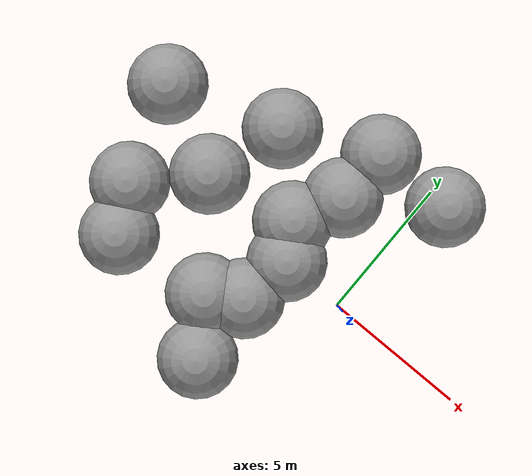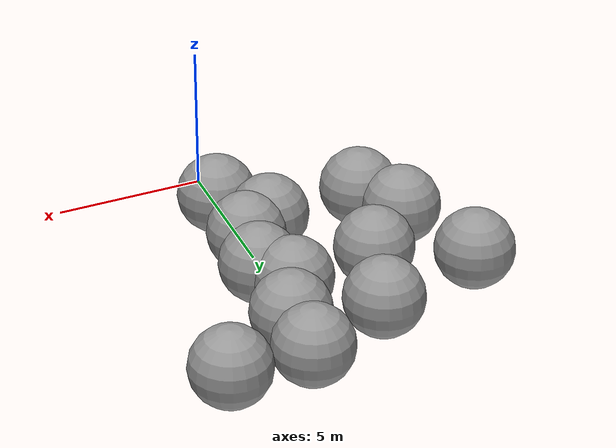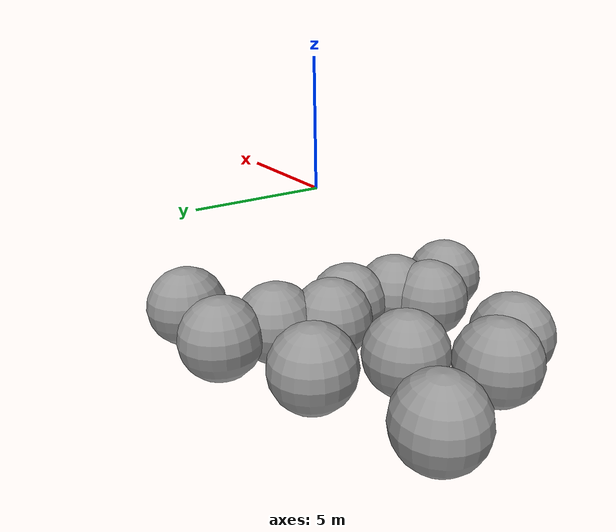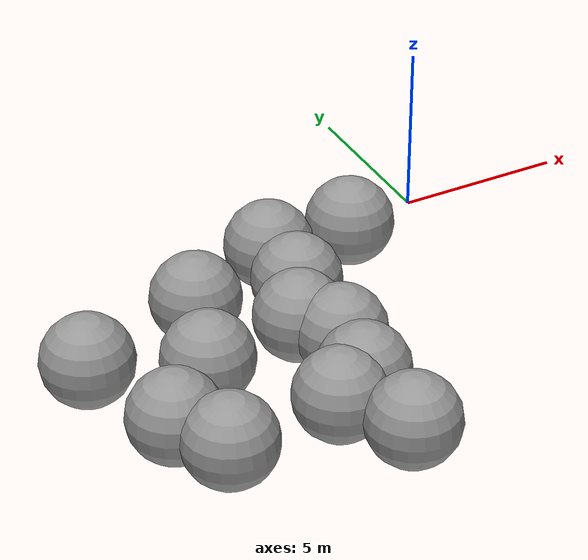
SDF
<sdf version="1.7">
 <world name="default">
  <model name="fly_spawn_26">
   <link name="link_0">
    <inertial>
     <mass>1</mass>
     <inertia><ixx>0.1</ixx><ixy>0</ixy><ixz>0</ixz><iyy>0.1</iyy><iyz>0</iyz><izz>0.1</izz></inertia>
     <pose>0 0 -2.0 0 -0 0</pose>
    </inertial>
    <visual name="visual">
     <pose>0 0 -2.0 0 -0 0</pose>
     <geometry><sphere><radius>1.5</radius></sphere></geometry>
     <material>
      <lighting>1</lighting>
      <script><uri>file://media/materials/scripts/gazebo.material</uri><name>Gazebo/Grey</name></script>
      <shader type="pixel"><normal_map>__default__</normal_map></shader>
      <ambient>0.3 0.3 0.3 1</ambient>
      <diffuse>0.7 0.7 0.7 1</diffuse>
      <specular>0.01 0.01 0.01 1</specular>
      <emissive>0 0 0 1</emissive>
     </material>
    </visual>
    <collision name="collision">
     <pose>0 0 -2.0 0 -0 0</pose>
     <geometry><sphere><radius>1.5</radius></sphere></geometry>
     <surface>
      <friction>
       <ode><mu>1</mu><mu2>1</mu2><fdir1>0 0 0</fdir1><slip1>0</slip1><slip2>0</slip2></ode>
       <torsional>
        <coefficient>1</coefficient>
        <patch_radius>0</patch_radius>
        <surface_radius>0</surface_radius>
        <use_patch_radius>1</use_patch_radius>
        <ode><slip>0</slip></ode>
       </torsional>
      </friction>
      <bounce><restitution_coefficient>0</restitution_coefficient><threshold>1e+06</threshold></bounce>
      <contact>
       <collide_without_contact>0</collide_without_contact>
       <collide_without_contact_bitmask>1</collide_without_contact_bitmask>
       <collide_bitmask>1</collide_bitmask>
       <ode>
        <soft_cfm>0</soft_cfm>
        <soft_erp>0.2</soft_erp>
        <kp>1e+13</kp>
        <kd>1</kd>
        <max_vel>0.01</max_vel>
        <min_depth>0</min_depth>
       </ode>
       <bullet>
        <split_impulse>1</split_impulse>
        <split_impulse_penetration_threshold>-0.01</split_impulse_penetration_threshold>
        <soft_cfm>0</soft_cfm>
        <soft_erp>0.2</soft_erp>
        <kp>1e+13</kp>
        <kd>1</kd>
       </bullet>
      </contact>
     </surface>
    </collision>
   </link>
   <static>1</static>
   <pose>-7.58332 -3.13523  -2.0 0 -0 0</pose>
  </model>
  <model name="fly_spawn_0">
   <link name="link_0">
    <inertial>
     <mass>1</mass>
     <inertia><ixx>0.1</ixx><ixy>0</ixy><ixz>0</ixz><iyy>0.1</iyy><iyz>0</iyz><izz>0.1</izz></inertia>
     <pose>0 0 -2.0 0 -0 0</pose>
    </inertial>
    <visual name="visual">
     <pose>0 0 -2.0 0 -0 0</pose>
     <geometry><sphere><radius>1.5</radius></sphere></geometry>
     <material>
      <lighting>1</lighting>
      <script><uri>file://media/materials/scripts/gazebo.material</uri><name>Gazebo/Grey</name></script>
      <shader type="pixel"><normal_map>__default__</normal_map></shader>
      <ambient>0.3 0.3 0.3 1</ambient>
      <diffuse>0.7 0.7 0.7 1</diffuse>
      <specular>0.01 0.01 0.01 1</specular>
      <emissive>0 0 0 1</emissive>
     </material>
    </visual>
    <collision name="collision">
     <pose>0 0 -2.0 0 -0 0</pose>
     <geometry><sphere><radius>1.5</radius></sphere></geometry>
     <surface>
      <friction>
       <ode><mu>1</mu><mu2>1</mu2><fdir1>0 0 0</fdir1><slip1>0</slip1><slip2>0</slip2></ode>
       <torsional>
        <coefficient>1</coefficient>
        <patch_radius>0</patch_radius>
        <surface_radius>0</surface_radius>
        <use_patch_radius>1</use_patch_radius>
        <ode><slip>0</slip></ode>
       </torsional>
      </friction>
      <bounce><restitution_coefficient>0</restitution_coefficient><threshold>1e+06</threshold></bounce>
      <contact>
       <collide_without_contact>0</collide_without_contact>
       <collide_without_contact_bitmask>1</collide_without_contact_bitmask>
       <collide_bitmask>1</collide_bitmask>
       <ode>
        <soft_cfm>0</soft_cfm>
        <soft_erp>0.2</soft_erp>
        <kp>1e+13</kp>
        <kd>1</kd>
        <max_vel>0.01</max_vel>
        <min_depth>0</min_depth>
       </ode>
       <bullet>
        <split_impulse>1</split_impulse>
        <split_impulse_penetration_threshold>-0.01</split_impulse_penetration_threshold>
        <soft_cfm>0</soft_cfm>
        <soft_erp>0.2</soft_erp>
        <kp>1e+13</kp>
        <kd>1</kd>
       </bullet>
      </contact>
     </surface>
    </collision>
   </link>
   <static>1</static>
   <pose>-8.52314 -1.39972 -2.0 0 -0 0</pose>
  </model>
  <model name="fly_spawn_1">
   <link name="link_0">
    <inertial>
     <mass>1</mass>
     <inertia><ixx>0.1</ixx><ixy>0</ixy><ixz>0</ixz><iyy>0.1</iyy><iyz>0</iyz><izz>0.1</izz></inertia>
     <pose>0 0 -2.0 0 -0 0</pose>
    </inertial>
    <visual name="visual">
     <pose>0 0 -2.0 0 -0 0</pose>
     <geometry><sphere><radius>1.5</radius></sphere></geometry>
     <material>
      <lighting>1</lighting>
      <script><uri>file://media/materials/scripts/gazebo.material</uri><name>Gazebo/Grey</name></script>
      <shader type="pixel"><normal_map>__default__</normal_map></shader>
      <ambient>0.3 0.3 0.3 1</ambient>
      <diffuse>0.7 0.7 0.7 1</diffuse>
      <specular>0.01 0.01 0.01 1</specular>
      <emissive>0 0 0 1</emissive>
     </material>
    </visual>
    <collision name="collision">
     <pose>0 0 -2.0 0 -0 0</pose>
     <geometry><sphere><radius>1.5</radius></sphere></geometry>
     <surface>
      <friction>
       <ode><mu>1</mu><mu2>1</mu2><fdir1>0 0 0</fdir1><slip1>0</slip1><slip2>0</slip2></ode>
       <torsional>
        <coefficient>1</coefficient>
        <patch_radius>0</patch_radius>
        <surface_radius>0</surface_radius>
        <use_patch_radius>1</use_patch_radius>
        <ode><slip>0</slip></ode>
       </torsional>
      </friction>
      <bounce><restitution_coefficient>0</restitution_coefficient><threshold>1e+06</threshold></bounce>
      <contact>
       <collide_without_contact>0</collide_without_contact>
       <collide_without_contact_bitmask>1</collide_without_contact_bitmask>
       <collide_bitmask>1</collide_bitmask>
       <ode>
        <soft_cfm>0</soft_cfm>
        <soft_erp>0.2</soft_erp>
        <kp>1e+13</kp>
        <kd>1</kd>
        <max_vel>0.01</max_vel>
        <min_depth>0</min_depth>
       </ode>
       <bullet>
        <split_impulse>1</split_impulse>
        <split_impulse_penetration_threshold>-0.01</split_impulse_penetration_threshold>
        <soft_cfm>0</soft_cfm>
        <soft_erp>0.2</soft_erp>
        <kp>1e+13</kp>
        <kd>1</kd>
       </bullet>
      </contact>
     </surface>
    </collision>
   </link>
   <static>1</static>
   <pose>-9.74686 2.24543 -2.0 0 -0 0</pose>
  </model>
  <model name="fly_spawn_2">
   <link name="link_0">
    <inertial>
     <mass>1</mass>
     <inertia><ixx>0.1</ixx><ixy>0</ixy><ixz>0</ixz><iyy>0.1</iyy><iyz>0</iyz><izz>0.1</izz></inertia>
     <pose>0 0 -2.0 0 -0 0</pose>
    </inertial>
    <visual name="visual">
     <pose>0 0 -2.0 0 -0 0</pose>
     <geometry><sphere><radius>1.5</radius></sphere></geometry>
     <material>
      <lighting>1</lighting>
      <script><uri>file://media/materials/scripts/gazebo.material</uri><name>Gazebo/Grey</name></script>
      <shader type="pixel"><normal_map>__default__</normal_map></shader>
      <ambient>0.3 0.3 0.3 1</ambient>
      <diffuse>0.7 0.7 0.7 1</diffuse>
      <specular>0.01 0.01 0.01 1</specular>
      <emissive>0 0 0 1</emissive>
     </material>
    </visual>
    <collision name="collision">
     <pose>0 0 -2.0 0 -0 0</pose>
     <geometry><sphere><radius>1.5</radius></sphere></geometry>
     <surface>
      <friction>
       <ode><mu>1</mu><mu2>1</mu2><fdir1>0 0 0</fdir1><slip1>0</slip1><slip2>0</slip2></ode>
       <torsional>
        <coefficient>1</coefficient>
        <patch_radius>0</patch_radius>
        <surface_radius>0</surface_radius>
        <use_patch_radius>1</use_patch_radius>
        <ode><slip>0</slip></ode>
       </torsional>
      </friction>
      <bounce><restitution_coefficient>0</restitution_coefficient><threshold>1e+06</threshold></bounce>
      <contact>
       <collide_without_contact>0</collide_without_contact>
       <collide_without_contact_bitmask>1</collide_without_contact_bitmask>
       <collide_bitmask>1</collide_bitmask>
       <ode>
        <soft_cfm>0</soft_cfm>
        <soft_erp>0.2</soft_erp>
        <kp>1e+13</kp>
        <kd>1</kd>
        <max_vel>0.01</max_vel>
        <min_depth>0</min_depth>
       </ode>
       <bullet>
        <split_impulse>1</split_impulse>
        <split_impulse_penetration_threshold>-0.01</split_impulse_penetration_threshold>
        <soft_cfm>0</soft_cfm>
        <soft_erp>0.2</soft_erp>
        <kp>1e+13</kp>
        <kd>1</kd>
       </bullet>
      </contact>
     </surface>
    </collision>
   </link>
   <static>1</static>
   <pose>-6.45685 0.690864 -2.0 0 -0 0</pose>
  </model>
  <model name="fly_spawn_3">
   <link name="link_0">
    <inertial>
     <mass>1</mass>
     <inertia><ixx>0.1</ixx><ixy>0</ixy><ixz>0</ixz><iyy>0.1</iyy><iyz>0</iyz><izz>0.1</izz></inertia>
     <pose>0 0 -2.0 0 -0 0</pose>
    </inertial>
    <visual name="visual">
     <pose>0 0 -2.0 0 -0 0</pose>
     <geometry><sphere><radius>1.5</radius></sphere></geometry>
     <material>
      <lighting>1</lighting>
      <script><uri>file://media/materials/scripts/gazebo.material</uri><name>Gazebo/Grey</name></script>
      <shader type="pixel"><normal_map>__default__</normal_map></shader>
      <ambient>0.3 0.3 0.3 1</ambient>
      <diffuse>0.7 0.7 0.7 1</diffuse>
      <specular>0.01 0.01 0.01 1</specular>
      <emissive>0 0 0 1</emissive>
     </material>
    </visual>
    <collision name="collision">
     <pose>0 0 -2.0 0 -0 0</pose>
     <geometry><sphere><radius>1.5</radius></sphere></geometry>
     <surface>
      <friction>
       <ode><mu>1</mu><mu2>1</mu2><fdir1>0 0 0</fdir1><slip1>0</slip1><slip2>0</slip2></ode>
       <torsional>
        <coefficient>1</coefficient>
        <patch_radius>0</patch_radius>
        <surface_radius>0</surface_radius>
        <use_patch_radius>1</use_patch_radius>
        <ode><slip>0</slip></ode>
       </torsional>
      </friction>
      <bounce><restitution_coefficient>0</restitution_coefficient><threshold>1e+06</threshold></bounce>
      <contact>
       <collide_without_contact>0</collide_without_contact>
       <collide_without_contact_bitmask>1</collide_without_contact_bitmask>
       <collide_bitmask>1</collide_bitmask>
       <ode>
        <soft_cfm>0</soft_cfm>
        <soft_erp>0.2</soft_erp>
        <kp>1e+13</kp>
        <kd>1</kd>
        <max_vel>0.01</max_vel>
        <min_depth>0</min_depth>
       </ode>
       <bullet>
        <split_impulse>1</split_impulse>
        <split_impulse_penetration_threshold>-0.01</split_impulse_penetration_threshold>
        <soft_cfm>0</soft_cfm>
        <soft_erp>0.2</soft_erp>
        <kp>1e+13</kp>
        <kd>1</kd>
       </bullet>
      </contact>
     </surface>
    </collision>
   </link>
   <static>1</static>
   <pose>-5.46259 3.68039 -2.0 0 -0 0</pose>
  </model>
  <model name="fly_spawn_4">
   <link name="link_0">
    <inertial>
     <mass>1</mass>
     <inertia><ixx>0.1</ixx><ixy>0</ixy><ixz>0</ixz><iyy>0.1</iyy><iyz>0</iyz><izz>0.1</izz></inertia>
     <pose>0 0 -2.0 0 -0 0</pose>
    </inertial>
    <visual name="visual">
     <pose>0 0 -2.0 0 -0 0</pose>
     <geometry><sphere><radius>1.5</radius></sphere></geometry>
     <material>
      <lighting>1</lighting>
      <script><uri>file://media/materials/scripts/gazebo.material</uri><name>Gazebo/Grey</name></script>
      <shader type="pixel"><normal_map>__default__</normal_map></shader>
      <ambient>0.3 0.3 0.3 1</ambient>
      <diffuse>0.7 0.7 0.7 1</diffuse>
      <specular>0.01 0.01 0.01 1</specular>
      <emissive>0 0 0 1</emissive>
     </material>
    </visual>
    <collision name="collision">
     <pose>0 0 -2.0 0 -0 0</pose>
     <geometry><sphere><radius>1.5</radius></sphere></geometry>
     <surface>
      <friction>
       <ode><mu>1</mu><mu2>1</mu2><fdir1>0 0 0</fdir1><slip1>0</slip1><slip2>0</slip2></ode>
       <torsional>
        <coefficient>1</coefficient>
        <patch_radius>0</patch_radius>
        <surface_radius>0</surface_radius>
        <use_patch_radius>1</use_patch_radius>
        <ode><slip>0</slip></ode>
       </torsional>
      </friction>
      <bounce><restitution_coefficient>0</restitution_coefficient><threshold>1e+06</threshold></bounce>
      <contact>
       <collide_without_contact>0</collide_without_contact>
       <collide_without_contact_bitmask>1</collide_without_contact_bitmask>
       <collide_bitmask>1</collide_bitmask>
       <ode>
        <soft_cfm>0</soft_cfm>
        <soft_erp>0.2</soft_erp>
        <kp>1e+13</kp>
        <kd>1</kd>
        <max_vel>0.01</max_vel>
        <min_depth>0</min_depth>
       </ode>
       <bullet>
        <split_impulse>1</split_impulse>
        <split_impulse_penetration_threshold>-0.01</split_impulse_penetration_threshold>
        <soft_cfm>0</soft_cfm>
        <soft_erp>0.2</soft_erp>
        <kp>1e+13</kp>
        <kd>1</kd>
       </bullet>
      </contact>
     </surface>
    </collision>
   </link>
   <static>1</static>
   <pose>-3.00156 1.31675 -2.0 0 -0 0</pose>
  </model>
  <model name="fly_spawn_5">
   <link name="link_0">
    <inertial>
     <mass>1</mass>
     <inertia><ixx>0.1</ixx><ixy>0</ixy><ixz>0</ixz><iyy>0.1</iyy><iyz>0</iyz><izz>0.1</izz></inertia>
     <pose>0 0 -2.0 0 -0 0</pose>
    </inertial>
    <visual name="visual">
     <pose>0 0 -2.0 0 -0 0</pose>
     <geometry><sphere><radius>1.5</radius></sphere></geometry>
     <material>
      <lighting>1</lighting>
      <script><uri>file://media/materials/scripts/gazebo.material</uri><name>Gazebo/Grey</name></script>
      <shader type="pixel"><normal_map>__default__</normal_map></shader>
      <ambient>0.3 0.3 0.3 1</ambient>
      <diffuse>0.7 0.7 0.7 1</diffuse>
      <specular>0.01 0.01 0.01 1</specular>
      <emissive>0 0 0 1</emissive>
     </material>
    </visual>
    <collision name="collision">
     <pose>0 0 -2.0 0 -0 0</pose>
     <geometry><sphere><radius>1.5</radius></sphere></geometry>
     <surface>
      <friction>
       <ode><mu>1</mu><mu2>1</mu2><fdir1>0 0 0</fdir1><slip1>0</slip1><slip2>0</slip2></ode>
       <torsional>
        <coefficient>1</coefficient>
        <patch_radius>0</patch_radius>
        <surface_radius>0</surface_radius>
        <use_patch_radius>1</use_patch_radius>
        <ode><slip>0</slip></ode>
       </torsional>
      </friction>
      <bounce><restitution_coefficient>0</restitution_coefficient><threshold>1e+06</threshold></bounce>
      <contact>
       <collide_without_contact>0</collide_without_contact>
       <collide_without_contact_bitmask>1</collide_without_contact_bitmask>
       <collide_bitmask>1</collide_bitmask>
       <ode>
        <soft_cfm>0</soft_cfm>
        <soft_erp>0.2</soft_erp>
        <kp>1e+13</kp>
        <kd>1</kd>
        <max_vel>0.01</max_vel>
        <min_depth>0</min_depth>
       </ode>
       <bullet>
        <split_impulse>1</split_impulse>
        <split_impulse_penetration_threshold>-0.01</split_impulse_penetration_threshold>
        <soft_cfm>0</soft_cfm>
        <soft_erp>0.2</soft_erp>
        <kp>1e+13</kp>
        <kd>1</kd>
       </bullet>
      </contact>
     </surface>
    </collision>
   </link>
   <static>1</static>
   <pose>-3.76451 -2.7622 -2.0 0 -0 0</pose>
  </model>
  <model name="fly_spawn_6">
   <link name="link_0">
    <inertial>
     <mass>1</mass>
     <inertia><ixx>0.1</ixx><ixy>0</ixy><ixz>0</ixz><iyy>0.1</iyy><iyz>0</iyz><izz>0.1</izz></inertia>
     <pose>0 0 -2.0 0 -0 0</pose>
    </inertial>
    <visual name="visual">
     <pose>0 0 -2.0 0 -0 0</pose>
     <geometry><sphere><radius>1.5</radius></sphere></geometry>
     <material>
      <lighting>1</lighting>
      <script><uri>file://media/materials/scripts/gazebo.material</uri><name>Gazebo/Grey</name></script>
      <shader type="pixel"><normal_map>__default__</normal_map></shader>
      <ambient>0.3 0.3 0.3 1</ambient>
      <diffuse>0.7 0.7 0.7 1</diffuse>
      <specular>0.01 0.01 0.01 1</specular>
      <emissive>0 0 0 1</emissive>
     </material>
    </visual>
    <collision name="collision">
     <pose>0 0 -2.0 0 -0 0</pose>
     <geometry><sphere><radius>1.5</radius></sphere></geometry>
     <surface>
      <friction>
       <ode><mu>1</mu><mu2>1</mu2><fdir1>0 0 0</fdir1><slip1>0</slip1><slip2>0</slip2></ode>
       <torsional>
        <coefficient>1</coefficient>
        <patch_radius>0</patch_radius>
        <surface_radius>0</surface_radius>
        <use_patch_radius>1</use_patch_radius>
        <ode><slip>0</slip></ode>
       </torsional>
      </friction>
      <bounce><restitution_coefficient>0</restitution_coefficient><threshold>1e+06</threshold></bounce>
      <contact>
       <collide_without_contact>0</collide_without_contact>
       <collide_without_contact_bitmask>1</collide_without_contact_bitmask>
       <collide_bitmask>1</collide_bitmask>
       <ode>
        <soft_cfm>0</soft_cfm>
        <soft_erp>0.2</soft_erp>
        <kp>1e+13</kp>
        <kd>1</kd>
        <max_vel>0.01</max_vel>
        <min_depth>0</min_depth>
       </ode>
       <bullet>
        <split_impulse>1</split_impulse>
        <split_impulse_penetration_threshold>-0.01</split_impulse_penetration_threshold>
        <soft_cfm>0</soft_cfm>
        <soft_erp>0.2</soft_erp>
        <kp>1e+13</kp>
        <kd>1</kd>
       </bullet>
      </contact>
     </surface>
    </collision>
   </link>
   <static>1</static>
   <pose>-2.4608 -4.77839 -2.0 0 -0 0</pose>
  </model>
  <model name="fly_spawn_7">
   <link name="link_0">
    <inertial>
     <mass>1</mass>
     <inertia><ixx>0.1</ixx><ixy>0</ixy><ixz>0</ixz><iyy>0.1</iyy><iyz>0</iyz><izz>0.1</izz></inertia>
     <pose>0 0 -2.0 0 -0 0</pose>
    </inertial>
    <visual name="visual">
     <pose>0 0 -2.0 0 -0 0</pose>
     <geometry><sphere><radius>1.5</radius></sphere></geometry>
     <material>
      <lighting>1</lighting>
      <script><uri>file://media/materials/scripts/gazebo.material</uri><name>Gazebo/Grey</name></script>
      <shader type="pixel"><normal_map>__default__</normal_map></shader>
      <ambient>0.3 0.3 0.3 1</ambient>
      <diffuse>0.7 0.7 0.7 1</diffuse>
      <specular>0.01 0.01 0.01 1</specular>
      <emissive>0 0 0 1</emissive>
     </material>
    </visual>
    <collision name="collision">
     <pose>0 0 -2.0 0 -0 0</pose>
     <geometry><sphere><radius>1.5</radius></sphere></geometry>
     <surface>
      <friction>
       <ode><mu>1</mu><mu2>1</mu2><fdir1>0 0 0</fdir1><slip1>0</slip1><slip2>0</slip2></ode>
       <torsional>
        <coefficient>1</coefficient>
        <patch_radius>0</patch_radius>
        <surface_radius>0</surface_radius>
        <use_patch_radius>1</use_patch_radius>
        <ode><slip>0</slip></ode>
       </torsional>
      </friction>
      <bounce><restitution_coefficient>0</restitution_coefficient><threshold>1e+06</threshold></bounce>
      <contact>
       <collide_without_contact>0</collide_without_contact>
       <collide_without_contact_bitmask>1</collide_without_contact_bitmask>
       <collide_bitmask>1</collide_bitmask>
       <ode>
        <soft_cfm>0</soft_cfm>
        <soft_erp>0.2</soft_erp>
        <kp>1e+13</kp>
        <kd>1</kd>
        <max_vel>0.01</max_vel>
        <min_depth>0</min_depth>
       </ode>
       <bullet>
        <split_impulse>1</split_impulse>
        <split_impulse_penetration_threshold>-0.01</split_impulse_penetration_threshold>
        <soft_cfm>0</soft_cfm>
        <soft_erp>0.2</soft_erp>
        <kp>1e+13</kp>
        <kd>1</kd>
       </bullet>
      </contact>
     </surface>
    </collision>
   </link>
   <static>1</static>
   <pose>-2.55154 -1.99498 -2.0 0 -0 0</pose>
  </model>
  <model name="fly_spawn_8">
   <link name="link_0">
    <inertial>
     <mass>1</mass>
     <inertia><ixx>0.1</ixx><ixy>0</ixy><ixz>0</ixz><iyy>0.1</iyy><iyz>0</iyz><izz>0.1</izz></inertia>
     <pose>0 0 -2.0 0 -0 0</pose>
    </inertial>
    <visual name="visual">
     <pose>0 0 -2.0 0 -0 0</pose>
     <geometry><sphere><radius>1.5</radius></sphere></geometry>
     <material>
      <lighting>1</lighting>
      <script><uri>file://media/materials/scripts/gazebo.material</uri><name>Gazebo/Grey</name></script>
      <shader type="pixel"><normal_map>__default__</normal_map></shader>
      <ambient>0.3 0.3 0.3 1</ambient>
      <diffuse>0.7 0.7 0.7 1</diffuse>
      <specular>0.01 0.01 0.01 1</specular>
      <emissive>0 0 0 1</emissive>
     </material>
    </visual>
    <collision name="collision">
     <pose>0 0 -2.0 0 -0 0</pose>
     <geometry><sphere><radius>1.5</radius></sphere></geometry>
     <surface>
      <friction>
       <ode><mu>1</mu><mu2>1</mu2><fdir1>0 0 0</fdir1><slip1>0</slip1><slip2>0</slip2></ode>
       <torsional>
        <coefficient>1</coefficient>
        <patch_radius>0</patch_radius>
        <surface_radius>0</surface_radius>
        <use_patch_radius>1</use_patch_radius>
        <ode><slip>0</slip></ode>
       </torsional>
      </friction>
      <bounce><restitution_coefficient>0</restitution_coefficient><threshold>1e+06</threshold></bounce>
      <contact>
       <collide_without_contact>0</collide_without_contact>
       <collide_without_contact_bitmask>1</collide_without_contact_bitmask>
       <collide_bitmask>1</collide_bitmask>
       <ode>
        <soft_cfm>0</soft_cfm>
        <soft_erp>0.2</soft_erp>
        <kp>1e+13</kp>
        <kd>1</kd>
        <max_vel>0.01</max_vel>
        <min_depth>0</min_depth>
       </ode>
       <bullet>
        <split_impulse>1</split_impulse>
        <split_impulse_penetration_threshold>-0.01</split_impulse_penetration_threshold>
        <soft_cfm>0</soft_cfm>
        <soft_erp>0.2</soft_erp>
        <kp>1e+13</kp>
        <kd>1</kd>
       </bullet>
      </contact>
     </surface>
    </collision>
   </link>
   <static>1</static>
   <pose>-2.22118 0.032094 -2.0 0 -0 0</pose>
  </model>
  <model name="fly_spawn_9">
   <link name="link_0">
    <inertial>
     <mass>1</mass>
     <inertia><ixx>0.1</ixx><ixy>0</ixy><ixz>0</ixz><iyy>0.1</iyy><iyz>0</iyz><izz>0.1</izz></inertia>
     <pose>0 0 -2.0 0 -0 0</pose>
    </inertial>
    <visual name="visual">
     <pose>0 0 -2.0 0 -0 0</pose>
     <geometry><sphere><radius>1.5</radius></sphere></geometry>
     <material>
      <lighting>1</lighting>
      <script><uri>file://media/materials/scripts/gazebo.material</uri><name>Gazebo/Grey</name></script>
      <shader type="pixel"><normal_map>__default__</normal_map></shader>
      <ambient>0.3 0.3 0.3 1</ambient>
      <diffuse>0.7 0.7 0.7 1</diffuse>
      <specular>0.01 0.01 0.01 1</specular>
      <emissive>0 0 0 1</emissive>
     </material>
    </visual>
    <collision name="collision">
     <pose>0 0 -2.0 0 -0 0</pose>
     <geometry><sphere><radius>1.5</radius></sphere></geometry>
     <surface>
      <friction>
       <ode><mu>1</mu><mu2>1</mu2><fdir1>0 0 0</fdir1><slip1>0</slip1><slip2>0</slip2></ode>
       <torsional>
        <coefficient>1</coefficient>
        <patch_radius>0</patch_radius>
        <surface_radius>0</surface_radius>
        <use_patch_radius>1</use_patch_radius>
        <ode><slip>0</slip></ode>
       </torsional>
      </friction>
      <bounce><restitution_coefficient>0</restitution_coefficient><threshold>1e+06</threshold></bounce>
      <contact>
       <collide_without_contact>0</collide_without_contact>
       <collide_without_contact_bitmask>1</collide_without_contact_bitmask>
       <collide_bitmask>1</collide_bitmask>
       <ode>
        <soft_cfm>0</soft_cfm>
        <soft_erp>0.2</soft_erp>
        <kp>1e+13</kp>
        <kd>1</kd>
        <max_vel>0.01</max_vel>
        <min_depth>0</min_depth>
       </ode>
       <bullet>
        <split_impulse>1</split_impulse>
        <split_impulse_penetration_threshold>-0.01</split_impulse_penetration_threshold>
        <soft_cfm>0</soft_cfm>
        <soft_erp>0.2</soft_erp>
        <kp>1e+13</kp>
        <kd>1</kd>
       </bullet>
      </contact>
     </surface>
    </collision>
   </link>
   <static>1</static>
   <pose>-2.13767 3.15104 -2.0 0 -0 0</pose>
  </model>
  <model name="fly_spawn_10">
   <link name="link_0">
    <inertial>
     <mass>1</mass>
     <inertia><ixx>0.1</ixx><ixy>0</ixy><ixz>0</ixz><iyy>0.1</iyy><iyz>0</iyz><izz>0.1</izz></inertia>
     <pose>0 0 -2.0 0 -0 0</pose>
    </inertial>
    <visual name="visual">
     <pose>0 0 -2.0 0 -0 0</pose>
     <geometry><sphere><radius>1.5</radius></sphere></geometry>
     <material>
      <lighting>1</lighting>
      <script><uri>file://media/materials/scripts/gazebo.material</uri><name>Gazebo/Grey</name></script>
      <shader type="pixel"><normal_map>__default__</normal_map></shader>
      <ambient>0.3 0.3 0.3 1</ambient>
      <diffuse>0.7 0.7 0.7 1</diffuse>
      <specular>0.01 0.01 0.01 1</specular>
      <emissive>0 0 0 1</emissive>
     </material>
    </visual>
    <collision name="collision">
     <pose>0 0 -2.0 0 -0 0</pose>
     <geometry><sphere><radius>1.5</radius></sphere></geometry>
     <surface>
      <friction>
       <ode><mu>1</mu><mu2>1</mu2><fdir1>0 0 0</fdir1><slip1>0</slip1><slip2>0</slip2></ode>
       <torsional>
        <coefficient>1</coefficient>
        <patch_radius>0</patch_radius>
        <surface_radius>0</surface_radius>
        <use_patch_radius>1</use_patch_radius>
        <ode><slip>0</slip></ode>
       </torsional>
      </friction>
      <bounce><restitution_coefficient>0</restitution_coefficient><threshold>1e+06</threshold></bounce>
      <contact>
       <collide_without_contact>0</collide_without_contact>
       <collide_without_contact_bitmask>1</collide_without_contact_bitmask>
       <collide_bitmask>1</collide_bitmask>
       <ode>
        <soft_cfm>0</soft_cfm>
        <soft_erp>0.2</soft_erp>
        <kp>1e+13</kp>
        <kd>1</kd>
        <max_vel>0.01</max_vel>
        <min_depth>0</min_depth>
       </ode>
       <bullet>
        <split_impulse>1</split_impulse>
        <split_impulse_penetration_threshold>-0.01</split_impulse_penetration_threshold>
        <soft_cfm>0</soft_cfm>
        <soft_erp>0.2</soft_erp>
        <kp>1e+13</kp>
        <kd>1</kd>
       </bullet>
      </contact>
     </surface>
    </collision>
   </link>
   <static>1</static>
   <pose>-2.06979 5.26516 -2.0 0 -0 0</pose>
  </model>
  <model name="fly_spawn_11">
   <link name="link_0">
    <inertial>
     <mass>1</mass>
     <inertia><ixx>0.1</ixx><ixy>0</ixy><ixz>0</ixz><iyy>0.1</iyy><iyz>0</iyz><izz>0.1</izz></inertia>
     <pose>0 0 -2.0 0 -0 0</pose>
    </inertial>
    <visual name="visual">
     <pose>0 0 -2.0 0 -0 0</pose>
     <geometry><sphere><radius>1.5</radius></sphere></geometry>
     <material>
      <lighting>1</lighting>
      <script><uri>file://media/materials/scripts/gazebo.material</uri><name>Gazebo/Grey</name></script>
      <shader type="pixel"><normal_map>__default__</normal_map></shader>
      <ambient>0.3 0.3 0.3 1</ambient>
      <diffuse>0.7 0.7 0.7 1</diffuse>
      <specular>0.01 0.01 0.01 1</specular>
      <emissive>0 0 0 1</emissive>
     </material>
    </visual>
    <collision name="collision">
     <pose>0 0 -2.0 0 -0 0</pose>
     <geometry><sphere><radius>1.5</radius></sphere></geometry>
     <surface>
      <friction>
       <ode><mu>1</mu><mu2>1</mu2><fdir1>0 0 0</fdir1><slip1>0</slip1><slip2>0</slip2></ode>
       <torsional>
        <coefficient>1</coefficient>
        <patch_radius>0</patch_radius>
        <surface_radius>0</surface_radius>
        <use_patch_radius>1</use_patch_radius>
        <ode><slip>0</slip></ode>
       </torsional>
      </friction>
      <bounce><restitution_coefficient>0</restitution_coefficient><threshold>1e+06</threshold></bounce>
      <contact>
       <collide_without_contact>0</collide_without_contact>
       <collide_without_contact_bitmask>1</collide_without_contact_bitmask>
       <collide_bitmask>1</collide_bitmask>
       <ode>
        <soft_cfm>0</soft_cfm>
        <soft_erp>0.2</soft_erp>
        <kp>1e+13</kp>
        <kd>1</kd>
        <max_vel>0.01</max_vel>
        <min_depth>0</min_depth>
       </ode>
       <bullet>
        <split_impulse>1</split_impulse>
        <split_impulse_penetration_threshold>-0.01</split_impulse_penetration_threshold>
        <soft_cfm>0</soft_cfm>
        <soft_erp>0.2</soft_erp>
        <kp>1e+13</kp>
        <kd>1</kd>
       </bullet>
      </contact>
     </surface>
    </collision>
   </link>
   <static>1</static>
   <pose>0.970383 5.28289 -2.0 0 -0 0</pose>
  </model>
 </world>
</sdf>
